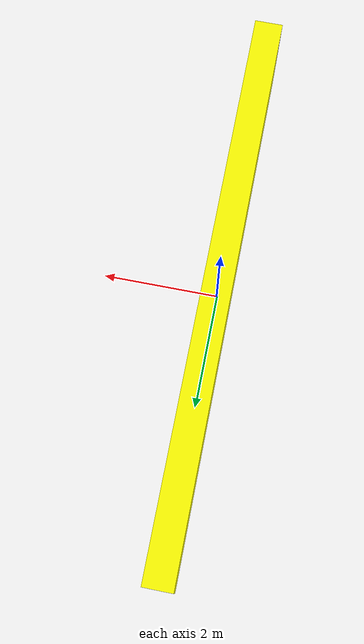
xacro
<?xml version="1.0"?>
<robot xmlns:xacro="http://ros.org/wiki/xacro" name="wall">

    <xacro:arg name="robot_model_name" default="diff_drive" />

    <xacro:property name="wall_name" value="wall" />
    <xacro:property name="link_name" value="box" />
    <xacro:property name="visual_size" value="0.5 10.0 2.0" />
    <xacro:property name="color" value="1.0 1.0 0.0 1" />
    <xacro:property name="color_name" value="yellow" />
    <xacro:property name="mass" value="1.14395" />
    <xacro:property name="ixx" value="9.532917" />
    <xacro:property name="iyy" value="0.023832" />
    <xacro:property name="izz" value="9.556749" />

    <link name="${link_name}">
        <inertial>
            <mass value="${mass}" />
            <inertia ixx="${ixx}" ixy="0" ixz="0" iyy="${iyy}" iyz="0" izz="${izz}" />
        </inertial>
        <visual>
            <origin xyz="0 0 0" rpy="0 0 0" />
            <geometry>
                <box size="${visual_size}" />
            </geometry>
            <material name="${color_name}">
                <color rgba="${color}" />
            </material>
        </visual>
        <collision name="wall_collision">
            <origin xyz="0 0 0" rpy="0 0 0" />
            <geometry>
                <box size="${visual_size}" />
            </geometry>
        </collision>
    </link>

    <gazebo>
        <static>true</static>
        <!-- Touch plugin -->
    </gazebo>

</robot>
